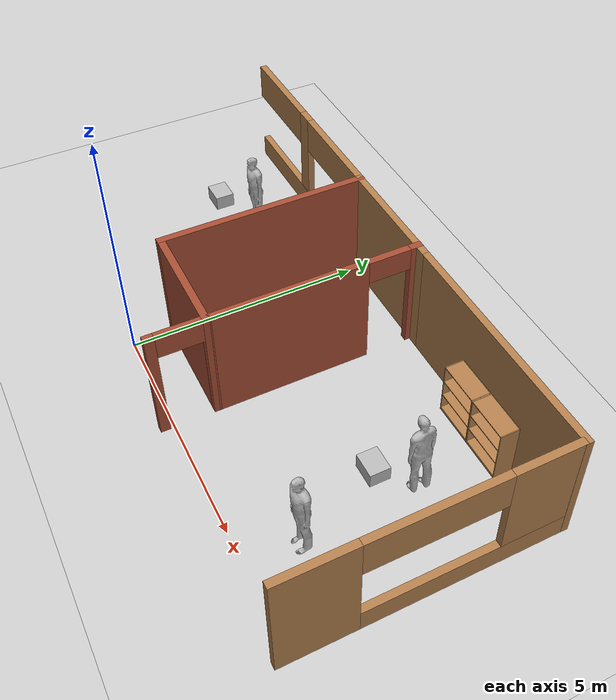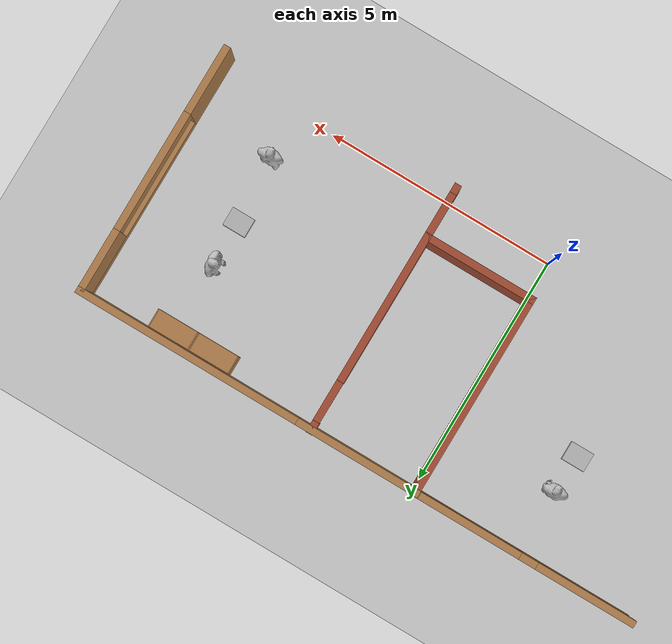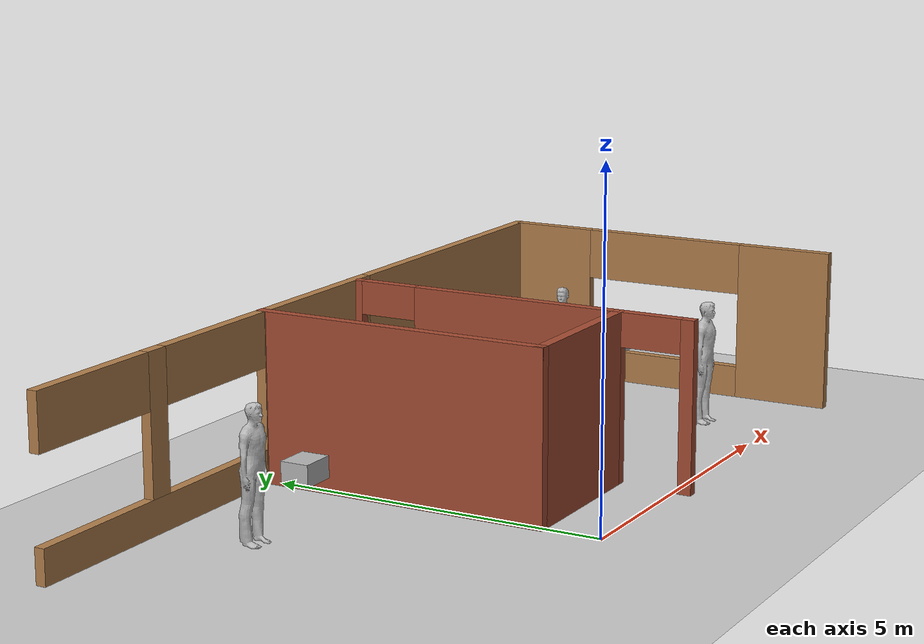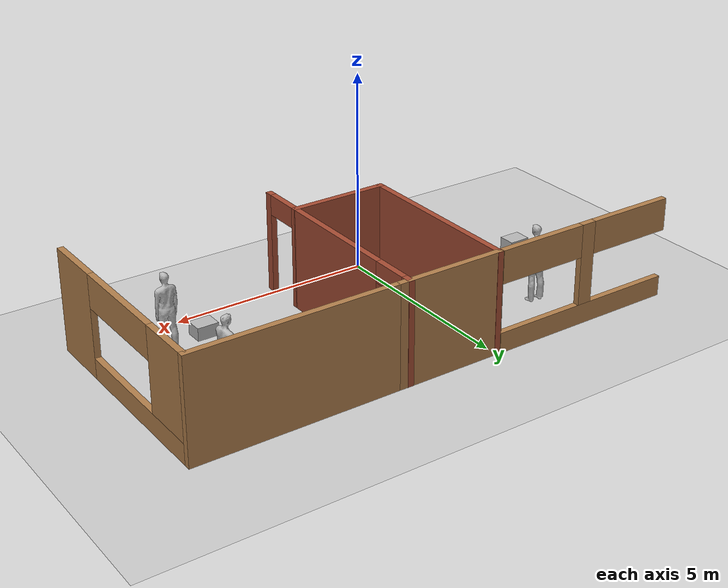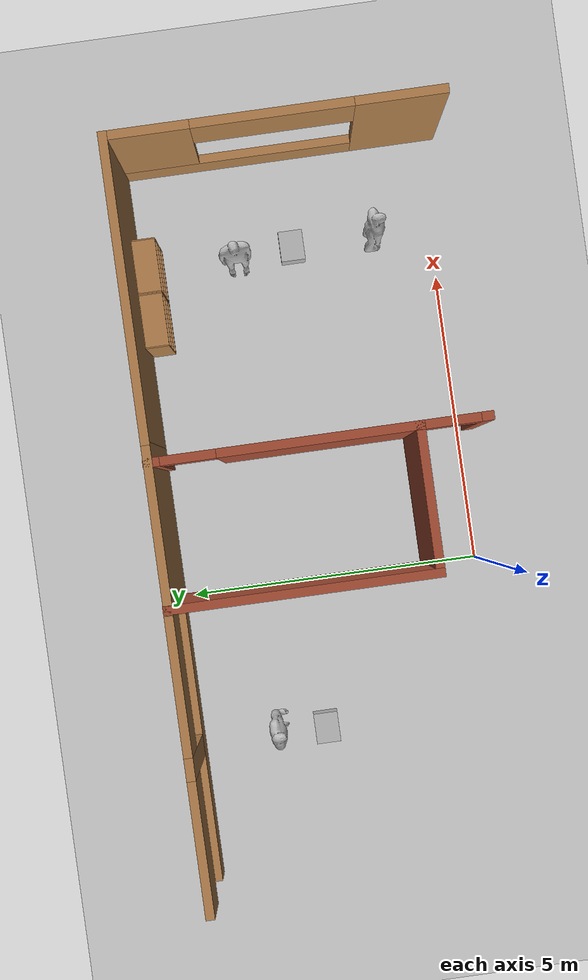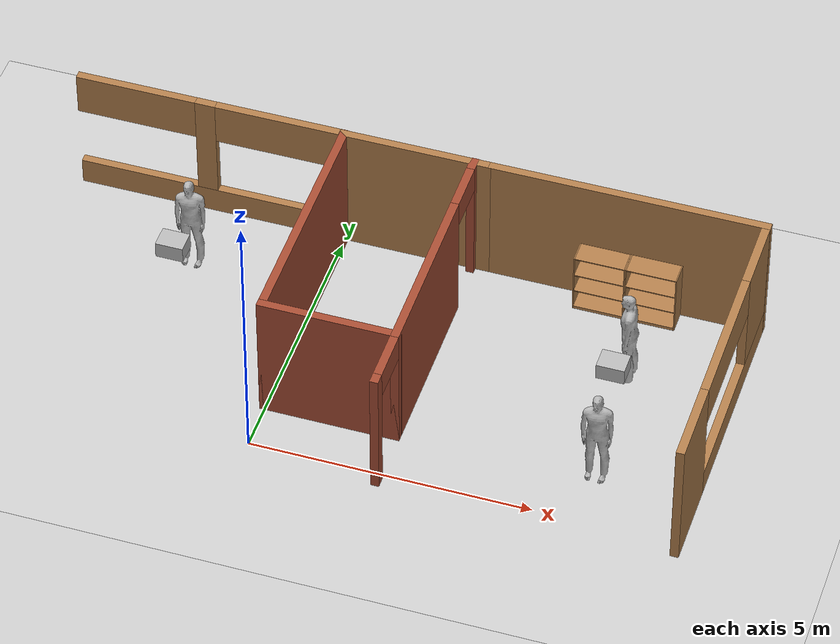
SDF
<sdf version="1.7">
 <world name="default">
  <model name="ground_plane">
   <static>1</static>
   <link name="link">
    <collision name="collision">
     <geometry><plane><normal>0 0 1</normal><size>100 100</size></plane></geometry>
     <surface><friction><ode><mu>100</mu><mu2>50</mu2></ode></friction></surface>
    </collision>
    <visual name="visual">
     <cast_shadows>0</cast_shadows>
     <geometry><plane><normal>0 0 1</normal><size>100 100</size></plane></geometry>
     <material>
      <script><uri>file://media/materials/scripts/gazebo.material</uri><name>Gazebo/Grey</name></script>
     </material>
    </visual>
   </link>
  </model>
  <model name="turtlebot3_house3">
   <link name="Wall_101">
    <pose>-0.05 3.1 0 0 0 -1.5708</pose>
    <visual name="Wall_101_Visual">
     <pose>0 0 1.25 0 -0 0</pose>
     <geometry><box><size>4.5 0.15 2.5</size></box></geometry>
     <material>
      <script><uri>file://media/materials/scripts/gazebo.material</uri><name>Gazebo/Bricks</name></script>
      <ambient>1 1 1 1</ambient>
      <diffuse>1 1 1 1</diffuse>
      <specular>0.2 0.2 0.2 1</specular>
      <emissive>0 0 0 1</emissive>
      <shader type="pixel"/>
     </material>
    </visual>
    <collision name="Wall_101_Collision">
     <pose>0 0 1.25 0 -0 0</pose>
     <geometry><box><size>4.5 0.15 2.5</size></box></geometry>
     <surface>
      <friction>
       <ode><mu>1</mu><mu2>1</mu2><fdir1>0 0 0</fdir1><slip1>0</slip1><slip2>0</slip2></ode>
       <torsional>
        <coefficient>1</coefficient>
        <patch_radius>0</patch_radius>
        <surface_radius>0</surface_radius>
        <use_patch_radius>1</use_patch_radius>
        <ode><slip>0</slip></ode>
       </torsional>
      </friction>
      <bounce><restitution_coefficient>0</restitution_coefficient><threshold>1e+06</threshold></bounce>
      <contact>
       <collide_without_contact>0</collide_without_contact>
       <collide_without_contact_bitmask>1</collide_without_contact_bitmask>
       <collide_bitmask>1</collide_bitmask>
       <ode>
        <soft_cfm>0</soft_cfm>
        <soft_erp>0.2</soft_erp>
        <kp>1e+13</kp>
        <kd>1</kd>
        <max_vel>0.01</max_vel>
        <min_depth>0</min_depth>
       </ode>
       <bullet>
        <split_impulse>1</split_impulse>
        <split_impulse_penetration_threshold>-0.01</split_impulse_penetration_threshold>
        <soft_cfm>0</soft_cfm>
        <soft_erp>0.2</soft_erp>
        <kp>1e+13</kp>
        <kd>1</kd>
       </bullet>
      </contact>
     </surface>
    </collision>
   </link>
   <link name="Wall_104">
    <pose>2.3 3.1 0 0 -0 1.5708</pose>
    <visual name="Wall_104_Visual_2">
     <pose>1.5325 0 2.25 0 -0 0</pose>
     <geometry><box><size>0.9 0.15 0.5</size></box></geometry>
     <material>
      <script><uri>file://media/materials/scripts/gazebo.material</uri><name>Gazebo/Bricks</name></script>
      <ambient>1 1 1 1</ambient>
      <diffuse>1 1 1 1</diffuse>
      <specular>0.2 0.2 0.2 1</specular>
      <emissive>0 0 0 1</emissive>
      <shader type="pixel"/>
     </material>
    </visual>
    <visual name="Wall_104_Visual_1">
     <pose>2.11625 0 1.25 0 -0 0</pose>
     <geometry><box><size>0.267504 0.15 2.5</size></box></geometry>
     <material>
      <script><uri>file://media/materials/scripts/gazebo.material</uri><name>Gazebo/Bricks</name></script>
      <ambient>1 1 1 1</ambient>
      <diffuse>1 1 1 1</diffuse>
      <specular>0.2 0.2 0.2 1</specular>
      <emissive>0 0 0 1</emissive>
      <shader type="pixel"/>
     </material>
    </visual>
    <visual name="Wall_104_Visual_0">
     <pose>-0.583752 0 1.25 0 -0 0</pose>
     <geometry><box><size>3.3325 0.15 2.5</size></box></geometry>
     <material>
      <script><uri>file://media/materials/scripts/gazebo.material</uri><name>Gazebo/Bricks</name></script>
      <ambient>1 1 1 1</ambient>
      <diffuse>1 1 1 1</diffuse>
      <specular>0.2 0.2 0.2 1</specular>
      <emissive>0 0 0 1</emissive>
      <shader type="pixel"/>
     </material>
    </visual>
    <collision name="Wall_104_Collision_1">
     <pose>2.11625 0 1.25 0 -0 0</pose>
     <geometry><box><size>0.267504 0.15 2.5</size></box></geometry>
     <surface>
      <friction>
       <ode><mu>1</mu><mu2>1</mu2><fdir1>0 0 0</fdir1><slip1>0</slip1><slip2>0</slip2></ode>
       <torsional>
        <coefficient>1</coefficient>
        <patch_radius>0</patch_radius>
        <surface_radius>0</surface_radius>
        <use_patch_radius>1</use_patch_radius>
        <ode><slip>0</slip></ode>
       </torsional>
      </friction>
      <bounce><restitution_coefficient>0</restitution_coefficient><threshold>1e+06</threshold></bounce>
      <contact>
       <collide_without_contact>0</collide_without_contact>
       <collide_without_contact_bitmask>1</collide_without_contact_bitmask>
       <collide_bitmask>1</collide_bitmask>
       <ode>
        <soft_cfm>0</soft_cfm>
        <soft_erp>0.2</soft_erp>
        <kp>1e+13</kp>
        <kd>1</kd>
        <max_vel>0.01</max_vel>
        <min_depth>0</min_depth>
       </ode>
       <bullet>
        <split_impulse>1</split_impulse>
        <split_impulse_penetration_threshold>-0.01</split_impulse_penetration_threshold>
        <soft_cfm>0</soft_cfm>
        <soft_erp>0.2</soft_erp>
        <kp>1e+13</kp>
        <kd>1</kd>
       </bullet>
      </contact>
     </surface>
    </collision>
    <collision name="Wall_104_Collision_0">
     <pose>-0.583752 0 1.25 0 -0 0</pose>
     <geometry><box><size>3.3325 0.15 2.5</size></box></geometry>
     <surface>
      <friction>
       <ode><mu>1</mu><mu2>1</mu2><fdir1>0 0 0</fdir1><slip1>0</slip1><slip2>0</slip2></ode>
       <torsional>
        <coefficient>1</coefficient>
        <patch_radius>0</patch_radius>
        <surface_radius>0</surface_radius>
        <use_patch_radius>1</use_patch_radius>
        <ode><slip>0</slip></ode>
       </torsional>
      </friction>
      <bounce><restitution_coefficient>0</restitution_coefficient><threshold>1e+06</threshold></bounce>
      <contact>
       <collide_without_contact>0</collide_without_contact>
       <collide_without_contact_bitmask>1</collide_without_contact_bitmask>
       <collide_bitmask>1</collide_bitmask>
       <ode>
        <soft_cfm>0</soft_cfm>
        <soft_erp>0.2</soft_erp>
        <kp>1e+13</kp>
        <kd>1</kd>
        <max_vel>0.01</max_vel>
        <min_depth>0</min_depth>
       </ode>
       <bullet>
        <split_impulse>1</split_impulse>
        <split_impulse_penetration_threshold>-0.01</split_impulse_penetration_threshold>
        <soft_cfm>0</soft_cfm>
        <soft_erp>0.2</soft_erp>
        <kp>1e+13</kp>
        <kd>1</kd>
       </bullet>
      </contact>
     </surface>
    </collision>
    <collision name="Wall_104_Collision_2">
     <pose>1.5325 0 2.25 0 -0 0</pose>
     <geometry><box><size>0.9 0.15 0.5</size></box></geometry>
     <surface>
      <friction>
       <ode><mu>1</mu><mu2>1</mu2><fdir1>0 0 0</fdir1><slip1>0</slip1><slip2>0</slip2></ode>
       <torsional>
        <coefficient>1</coefficient>
        <patch_radius>0</patch_radius>
        <surface_radius>0</surface_radius>
        <use_patch_radius>1</use_patch_radius>
        <ode><slip>0</slip></ode>
       </torsional>
      </friction>
      <bounce><restitution_coefficient>0</restitution_coefficient><threshold>1e+06</threshold></bounce>
      <contact>
       <collide_without_contact>0</collide_without_contact>
       <collide_without_contact_bitmask>1</collide_without_contact_bitmask>
       <collide_bitmask>1</collide_bitmask>
       <ode>
        <soft_cfm>0</soft_cfm>
        <soft_erp>0.2</soft_erp>
        <kp>1e+13</kp>
        <kd>1</kd>
        <max_vel>0.01</max_vel>
        <min_depth>0</min_depth>
       </ode>
       <bullet>
        <split_impulse>1</split_impulse>
        <split_impulse_penetration_threshold>-0.01</split_impulse_penetration_threshold>
        <soft_cfm>0</soft_cfm>
        <soft_erp>0.2</soft_erp>
        <kp>1e+13</kp>
        <kd>1</kd>
       </bullet>
      </contact>
     </surface>
    </collision>
   </link>
   <link name="Wall_81">
    <pose>5.07752 5.2688 0 0 -0 3.14159</pose>
    <visual name="Wall_81_Visual">
     <pose>0 0 1.25 0 -0 0</pose>
     <geometry><box><size>5 0.15 2.5</size></box></geometry>
     <material>
      <script><uri>file://media/materials/scripts/gazebo.material</uri><name>Gazebo/Wood</name></script>
      <ambient>1 1 1 1</ambient>
      <diffuse>1 1 1 1</diffuse>
      <specular>0.2 0.2 0.2 1</specular>
      <emissive>0 0 0 1</emissive>
      <shader type="pixel"/>
     </material>
    </visual>
    <collision name="Wall_81_Collision">
     <pose>0 0 1.25 0 -0 0</pose>
     <geometry><box><size>5 0.15 2.5</size></box></geometry>
     <surface>
      <friction>
       <ode><mu>1</mu><mu2>1</mu2><fdir1>0 0 0</fdir1><slip1>0</slip1><slip2>0</slip2></ode>
       <torsional>
        <coefficient>1</coefficient>
        <patch_radius>0</patch_radius>
        <surface_radius>0</surface_radius>
        <use_patch_radius>1</use_patch_radius>
        <ode><slip>0</slip></ode>
       </torsional>
      </friction>
      <bounce><restitution_coefficient>0</restitution_coefficient><threshold>1e+06</threshold></bounce>
      <contact>
       <collide_without_contact>0</collide_without_contact>
       <collide_without_contact_bitmask>1</collide_without_contact_bitmask>
       <collide_bitmask>1</collide_bitmask>
       <ode>
        <soft_cfm>0</soft_cfm>
        <soft_erp>0.2</soft_erp>
        <kp>1e+13</kp>
        <kd>1</kd>
        <max_vel>0.01</max_vel>
        <min_depth>0</min_depth>
       </ode>
       <bullet>
        <split_impulse>1</split_impulse>
        <split_impulse_penetration_threshold>-0.01</split_impulse_penetration_threshold>
        <soft_cfm>0</soft_cfm>
        <soft_erp>0.2</soft_erp>
        <kp>1e+13</kp>
        <kd>1</kd>
       </bullet>
      </contact>
     </surface>
    </collision>
   </link>
   <link name="Wall_82">
    <pose>1.25 5.26876 0 0 -0 3.14159</pose>
    <visual name="Wall_82_Visual">
     <pose>0 0 1.25 0 -0 0</pose>
     <geometry><box><size>2.75 0.15 2.5</size></box></geometry>
     <material>
      <script><uri>file://media/materials/scripts/gazebo.material</uri><name>Gazebo/Wood</name></script>
      <ambient>1 1 1 1</ambient>
      <diffuse>1 1 1 1</diffuse>
      <specular>0.2 0.2 0.2 1</specular>
      <emissive>0 0 0 1</emissive>
      <shader type="pixel"/>
     </material>
    </visual>
    <collision name="Wall_82_Collision">
     <pose>0 0 1.25 0 -0 0</pose>
     <geometry><box><size>2.75 0.15 2.5</size></box></geometry>
     <surface>
      <friction>
       <ode><mu>1</mu><mu2>1</mu2><fdir1>0 0 0</fdir1><slip1>0</slip1><slip2>0</slip2></ode>
       <torsional>
        <coefficient>1</coefficient>
        <patch_radius>0</patch_radius>
        <surface_radius>0</surface_radius>
        <use_patch_radius>1</use_patch_radius>
        <ode><slip>0</slip></ode>
       </torsional>
      </friction>
      <bounce><restitution_coefficient>0</restitution_coefficient><threshold>1e+06</threshold></bounce>
      <contact>
       <collide_without_contact>0</collide_without_contact>
       <collide_without_contact_bitmask>1</collide_without_contact_bitmask>
       <collide_bitmask>1</collide_bitmask>
       <ode>
        <soft_cfm>0</soft_cfm>
        <soft_erp>0.2</soft_erp>
        <kp>1e+13</kp>
        <kd>1</kd>
        <max_vel>0.01</max_vel>
        <min_depth>0</min_depth>
       </ode>
       <bullet>
        <split_impulse>1</split_impulse>
        <split_impulse_penetration_threshold>-0.01</split_impulse_penetration_threshold>
        <soft_cfm>0</soft_cfm>
        <soft_erp>0.2</soft_erp>
        <kp>1e+13</kp>
        <kd>1</kd>
       </bullet>
      </contact>
     </surface>
    </collision>
   </link>
   <link name="Wall_83">
    <pose>-2.475 5.275 0 0 -0 3.14159</pose>
    <visual name="Wall_83_Visual_0">
     <pose>-2.41901 0 1.25 0 -0 0</pose>
     <geometry><box><size>0.161986 0.15 2.5</size></box></geometry>
     <material>
      <script><uri>file://media/materials/scripts/gazebo.material</uri><name>Gazebo/Wood</name></script>
      <ambient>1 1 1 1</ambient>
      <diffuse>1 1 1 1</diffuse>
      <specular>0.2 0.2 0.2 1</specular>
      <emissive>0 0 0 1</emissive>
      <shader type="pixel"/>
     </material>
    </visual>
    <visual name="Wall_83_Visual_1">
     <pose>0.080993 0 0.25 0 -0 0</pose>
     <geometry><box><size>4.83801 0.15 0.5</size></box></geometry>
     <material>
      <script><uri>file://media/materials/scripts/gazebo.material</uri><name>Gazebo/Wood</name></script>
      <ambient>1 1 1 1</ambient>
      <diffuse>1 1 1 1</diffuse>
      <specular>0.2 0.2 0.2 1</specular>
      <emissive>0 0 0 1</emissive>
      <shader type="pixel"/>
     </material>
    </visual>
    <visual name="Wall_83_Visual_6">
     <pose>1.39775 0 2.1 0 -0 0</pose>
     <geometry><box><size>2.20449 0.15 0.8</size></box></geometry>
     <material>
      <script><uri>file://media/materials/scripts/gazebo.material</uri><name>Gazebo/Wood</name></script>
      <ambient>1 1 1 1</ambient>
      <diffuse>1 1 1 1</diffuse>
      <specular>0.2 0.2 0.2 1</specular>
      <emissive>0 0 0 1</emissive>
      <shader type="pixel"/>
     </material>
    </visual>
    <visual name="Wall_83_Visual_4">
     <pose>-1.20651 0 2.1 0 -0 0</pose>
     <geometry><box><size>2.263 0.15 0.8</size></box></geometry>
     <material>
      <script><uri>file://media/materials/scripts/gazebo.material</uri><name>Gazebo/Wood</name></script>
      <ambient>1 1 1 1</ambient>
      <diffuse>1 1 1 1</diffuse>
      <specular>0.2 0.2 0.2 1</specular>
      <emissive>0 0 0 1</emissive>
      <shader type="pixel"/>
     </material>
    </visual>
    <visual name="Wall_83_Visual_3">
     <pose>0.110246 0 1.5 0 -0 0</pose>
     <geometry><box><size>0.37052 0.15 2</size></box></geometry>
     <material>
      <script><uri>file://media/materials/scripts/gazebo.material</uri><name>Gazebo/Wood</name></script>
      <ambient>1 1 1 1</ambient>
      <diffuse>1 1 1 1</diffuse>
      <specular>0.2 0.2 0.2 1</specular>
      <emissive>0 0 0 1</emissive>
      <shader type="pixel"/>
     </material>
    </visual>
    <visual name="Wall_83_Visual_5">
     <pose>1.39775 0 2.1 0 -0 0</pose>
     <geometry><box><size>2.20449 0.15 0.8</size></box></geometry>
     <material>
      <script><uri>file://media/materials/scripts/gazebo.material</uri><name>Gazebo/Wood</name></script>
      <ambient>1 1 1 1</ambient>
      <diffuse>1 1 1 1</diffuse>
      <specular>0.2 0.2 0.2 1</specular>
      <emissive>0 0 0 1</emissive>
      <shader type="pixel"/>
     </material>
    </visual>
    <visual name="Wall_83_Visual_2">
     <pose>0.110246 0 1.5 0 -0 0</pose>
     <geometry><box><size>0.37052 0.15 2</size></box></geometry>
     <material>
      <script><uri>file://media/materials/scripts/gazebo.material</uri><name>Gazebo/Wood</name></script>
      <ambient>1 1 1 1</ambient>
      <diffuse>1 1 1 1</diffuse>
      <specular>0.2 0.2 0.2 1</specular>
      <emissive>0 0 0 1</emissive>
      <shader type="pixel"/>
     </material>
    </visual>
    <collision name="Wall_83_Collision_5">
     <pose>1.39775 0 2.1 0 -0 0</pose>
     <geometry><box><size>2.20449 0.15 0.8</size></box></geometry>
     <surface>
      <friction>
       <ode><mu>1</mu><mu2>1</mu2><fdir1>0 0 0</fdir1><slip1>0</slip1><slip2>0</slip2></ode>
       <torsional>
        <coefficient>1</coefficient>
        <patch_radius>0</patch_radius>
        <surface_radius>0</surface_radius>
        <use_patch_radius>1</use_patch_radius>
        <ode><slip>0</slip></ode>
       </torsional>
      </friction>
      <bounce><restitution_coefficient>0</restitution_coefficient><threshold>1e+06</threshold></bounce>
      <contact>
       <collide_without_contact>0</collide_without_contact>
       <collide_without_contact_bitmask>1</collide_without_contact_bitmask>
       <collide_bitmask>1</collide_bitmask>
       <ode>
        <soft_cfm>0</soft_cfm>
        <soft_erp>0.2</soft_erp>
        <kp>1e+13</kp>
        <kd>1</kd>
        <max_vel>0.01</max_vel>
        <min_depth>0</min_depth>
       </ode>
       <bullet>
        <split_impulse>1</split_impulse>
        <split_impulse_penetration_threshold>-0.01</split_impulse_penetration_threshold>
        <soft_cfm>0</soft_cfm>
        <soft_erp>0.2</soft_erp>
        <kp>1e+13</kp>
        <kd>1</kd>
       </bullet>
      </contact>
     </surface>
    </collision>
    <collision name="Wall_83_Collision_1">
     <pose>0.080993 0 0.25 0 -0 0</pose>
     <geometry><box><size>4.83801 0.15 0.5</size></box></geometry>
     <surface>
      <friction>
       <ode><mu>1</mu><mu2>1</mu2><fdir1>0 0 0</fdir1><slip1>0</slip1><slip2>0</slip2></ode>
       <torsional>
        <coefficient>1</coefficient>
        <patch_radius>0</patch_radius>
        <surface_radius>0</surface_radius>
        <use_patch_radius>1</use_patch_radius>
        <ode><slip>0</slip></ode>
       </torsional>
      </friction>
      <bounce><restitution_coefficient>0</restitution_coefficient><threshold>1e+06</threshold></bounce>
      <contact>
       <collide_without_contact>0</collide_without_contact>
       <collide_without_contact_bitmask>1</collide_without_contact_bitmask>
       <collide_bitmask>1</collide_bitmask>
       <ode>
        <soft_cfm>0</soft_cfm>
        <soft_erp>0.2</soft_erp>
        <kp>1e+13</kp>
        <kd>1</kd>
        <max_vel>0.01</max_vel>
        <min_depth>0</min_depth>
       </ode>
       <bullet>
        <split_impulse>1</split_impulse>
        <split_impulse_penetration_threshold>-0.01</split_impulse_penetration_threshold>
        <soft_cfm>0</soft_cfm>
        <soft_erp>0.2</soft_erp>
        <kp>1e+13</kp>
        <kd>1</kd>
       </bullet>
      </contact>
     </surface>
    </collision>
    <collision name="Wall_83_Collision_4">
     <pose>-1.20651 0 2.1 0 -0 0</pose>
     <geometry><box><size>2.263 0.15 0.8</size></box></geometry>
     <surface>
      <friction>
       <ode><mu>1</mu><mu2>1</mu2><fdir1>0 0 0</fdir1><slip1>0</slip1><slip2>0</slip2></ode>
       <torsional>
        <coefficient>1</coefficient>
        <patch_radius>0</patch_radius>
        <surface_radius>0</surface_radius>
        <use_patch_radius>1</use_patch_radius>
        <ode><slip>0</slip></ode>
       </torsional>
      </friction>
      <bounce><restitution_coefficient>0</restitution_coefficient><threshold>1e+06</threshold></bounce>
      <contact>
       <collide_without_contact>0</collide_without_contact>
       <collide_without_contact_bitmask>1</collide_without_contact_bitmask>
       <collide_bitmask>1</collide_bitmask>
       <ode>
        <soft_cfm>0</soft_cfm>
        <soft_erp>0.2</soft_erp>
        <kp>1e+13</kp>
        <kd>1</kd>
        <max_vel>0.01</max_vel>
        <min_depth>0</min_depth>
       </ode>
       <bullet>
        <split_impulse>1</split_impulse>
        <split_impulse_penetration_threshold>-0.01</split_impulse_penetration_threshold>
        <soft_cfm>0</soft_cfm>
        <soft_erp>0.2</soft_erp>
        <kp>1e+13</kp>
        <kd>1</kd>
       </bullet>
      </contact>
     </surface>
    </collision>
    <collision name="Wall_83_Collision_3">
     <pose>0.110246 0 1.5 0 -0 0</pose>
     <geometry><box><size>0.37052 0.15 2</size></box></geometry>
     <surface>
      <friction>
       <ode><mu>1</mu><mu2>1</mu2><fdir1>0 0 0</fdir1><slip1>0</slip1><slip2>0</slip2></ode>
       <torsional>
        <coefficient>1</coefficient>
        <patch_radius>0</patch_radius>
        <surface_radius>0</surface_radius>
        <use_patch_radius>1</use_patch_radius>
        <ode><slip>0</slip></ode>
       </torsional>
      </friction>
      <bounce><restitution_coefficient>0</restitution_coefficient><threshold>1e+06</threshold></bounce>
      <contact>
       <collide_without_contact>0</collide_without_contact>
       <collide_without_contact_bitmask>1</collide_without_contact_bitmask>
       <collide_bitmask>1</collide_bitmask>
       <ode>
        <soft_cfm>0</soft_cfm>
        <soft_erp>0.2</soft_erp>
        <kp>1e+13</kp>
        <kd>1</kd>
        <max_vel>0.01</max_vel>
        <min_depth>0</min_depth>
       </ode>
       <bullet>
        <split_impulse>1</split_impulse>
        <split_impulse_penetration_threshold>-0.01</split_impulse_penetration_threshold>
        <soft_cfm>0</soft_cfm>
        <soft_erp>0.2</soft_erp>
        <kp>1e+13</kp>
        <kd>1</kd>
       </bullet>
      </contact>
     </surface>
    </collision>
    <collision name="Wall_83_Collision_6">
     <pose>1.39775 0 2.1 0 -0 0</pose>
     <geometry><box><size>2.20449 0.15 0.8</size></box></geometry>
     <surface>
      <friction>
       <ode><mu>1</mu><mu2>1</mu2><fdir1>0 0 0</fdir1><slip1>0</slip1><slip2>0</slip2></ode>
       <torsional>
        <coefficient>1</coefficient>
        <patch_radius>0</patch_radius>
        <surface_radius>0</surface_radius>
        <use_patch_radius>1</use_patch_radius>
        <ode><slip>0</slip></ode>
       </torsional>
      </friction>
      <bounce><restitution_coefficient>0</restitution_coefficient><threshold>1e+06</threshold></bounce>
      <contact>
       <collide_without_contact>0</collide_without_contact>
       <collide_without_contact_bitmask>1</collide_without_contact_bitmask>
       <collide_bitmask>1</collide_bitmask>
       <ode>
        <soft_cfm>0</soft_cfm>
        <soft_erp>0.2</soft_erp>
        <kp>1e+13</kp>
        <kd>1</kd>
        <max_vel>0.01</max_vel>
        <min_depth>0</min_depth>
       </ode>
       <bullet>
        <split_impulse>1</split_impulse>
        <split_impulse_penetration_threshold>-0.01</split_impulse_penetration_threshold>
        <soft_cfm>0</soft_cfm>
        <soft_erp>0.2</soft_erp>
        <kp>1e+13</kp>
        <kd>1</kd>
       </bullet>
      </contact>
     </surface>
    </collision>
    <collision name="Wall_83_Collision_2">
     <pose>0.110246 0 1.5 0 -0 0</pose>
     <geometry><box><size>0.37052 0.15 2</size></box></geometry>
     <surface>
      <friction>
       <ode><mu>1</mu><mu2>1</mu2><fdir1>0 0 0</fdir1><slip1>0</slip1><slip2>0</slip2></ode>
       <torsional>
        <coefficient>1</coefficient>
        <patch_radius>0</patch_radius>
        <surface_radius>0</surface_radius>
        <use_patch_radius>1</use_patch_radius>
        <ode><slip>0</slip></ode>
       </torsional>
      </friction>
      <bounce><restitution_coefficient>0</restitution_coefficient><threshold>1e+06</threshold></bounce>
      <contact>
       <collide_without_contact>0</collide_without_contact>
       <collide_without_contact_bitmask>1</collide_without_contact_bitmask>
       <collide_bitmask>1</collide_bitmask>
       <ode>
        <soft_cfm>0</soft_cfm>
        <soft_erp>0.2</soft_erp>
        <kp>1e+13</kp>
        <kd>1</kd>
        <max_vel>0.01</max_vel>
        <min_depth>0</min_depth>
       </ode>
       <bullet>
        <split_impulse>1</split_impulse>
        <split_impulse_penetration_threshold>-0.01</split_impulse_penetration_threshold>
        <soft_cfm>0</soft_cfm>
        <soft_erp>0.2</soft_erp>
        <kp>1e+13</kp>
        <kd>1</kd>
       </bullet>
      </contact>
     </surface>
    </collision>
    <collision name="Wall_83_Collision_0">
     <pose>-2.41901 0 1.25 0 -0 0</pose>
     <geometry><box><size>0.161986 0.15 2.5</size></box></geometry>
     <surface>
      <friction>
       <ode><mu>1</mu><mu2>1</mu2><fdir1>0 0 0</fdir1><slip1>0</slip1><slip2>0</slip2></ode>
       <torsional>
        <coefficient>1</coefficient>
        <patch_radius>0</patch_radius>
        <surface_radius>0</surface_radius>
        <use_patch_radius>1</use_patch_radius>
        <ode><slip>0</slip></ode>
       </torsional>
      </friction>
      <bounce><restitution_coefficient>0</restitution_coefficient><threshold>1e+06</threshold></bounce>
      <contact>
       <collide_without_contact>0</collide_without_contact>
       <collide_without_contact_bitmask>1</collide_without_contact_bitmask>
       <collide_bitmask>1</collide_bitmask>
       <ode>
        <soft_cfm>0</soft_cfm>
        <soft_erp>0.2</soft_erp>
        <kp>1e+13</kp>
        <kd>1</kd>
        <max_vel>0.01</max_vel>
        <min_depth>0</min_depth>
       </ode>
       <bullet>
        <split_impulse>1</split_impulse>
        <split_impulse_penetration_threshold>-0.01</split_impulse_penetration_threshold>
        <soft_cfm>0</soft_cfm>
        <soft_erp>0.2</soft_erp>
        <kp>1e+13</kp>
        <kd>1</kd>
       </bullet>
      </contact>
     </surface>
    </collision>
   </link>
   <link name="Wall_90">
    <pose>1.125 0.925 0 0 -0 0</pose>
    <visual name="Wall_90_Visual">
     <pose>0 0 1.25 0 -0 0</pose>
     <geometry><box><size>2.5 0.15 2.5</size></box></geometry>
     <material>
      <script><uri>file://media/materials/scripts/gazebo.material</uri><name>Gazebo/Bricks</name></script>
      <ambient>1 1 1 1</ambient>
      <diffuse>1 1 1 1</diffuse>
      <specular>0.2 0.2 0.2 1</specular>
      <emissive>0 0 0 1</emissive>
      <shader type="pixel"/>
     </material>
    </visual>
    <collision name="Wall_90_Collision">
     <pose>0 0 1.25 0 -0 0</pose>
     <geometry><box><size>2.5 0.15 2.5</size></box></geometry>
     <surface>
      <friction>
       <ode><mu>1</mu><mu2>1</mu2><fdir1>0 0 0</fdir1><slip1>0</slip1><slip2>0</slip2></ode>
       <torsional>
        <coefficient>1</coefficient>
        <patch_radius>0</patch_radius>
        <surface_radius>0</surface_radius>
        <use_patch_radius>1</use_patch_radius>
        <ode><slip>0</slip></ode>
       </torsional>
      </friction>
      <bounce><restitution_coefficient>0</restitution_coefficient><threshold>1e+06</threshold></bounce>
      <contact>
       <collide_without_contact>0</collide_without_contact>
       <collide_without_contact_bitmask>1</collide_without_contact_bitmask>
       <collide_bitmask>1</collide_bitmask>
       <ode>
        <soft_cfm>0</soft_cfm>
        <soft_erp>0.2</soft_erp>
        <kp>1e+13</kp>
        <kd>1</kd>
        <max_vel>0.01</max_vel>
        <min_depth>0</min_depth>
       </ode>
       <bullet>
        <split_impulse>1</split_impulse>
        <split_impulse_penetration_threshold>-0.01</split_impulse_penetration_threshold>
        <soft_cfm>0</soft_cfm>
        <soft_erp>0.2</soft_erp>
        <kp>1e+13</kp>
        <kd>1</kd>
       </bullet>
      </contact>
     </surface>
    </collision>
   </link>
   <link name="Wall_91">
    <pose>2.29994 0.37506 0 0 0 -1.57091</pose>
    <visual name="Wall_91_Visual_0">
     <pose>-0.551501 0 1.25 0 -0 0</pose>
     <geometry><box><size>0.146998 0.15 2.5</size></box></geometry>
     <material>
      <script><uri>file://media/materials/scripts/gazebo.material</uri><name>Gazebo/Bricks</name></script>
      <ambient>1 1 1 1</ambient>
      <diffuse>1 1 1 1</diffuse>
      <specular>0.2 0.2 0.2 1</specular>
      <emissive>0 0 0 1</emissive>
      <shader type="pixel"/>
     </material>
    </visual>
    <visual name="Wall_91_Visual_1">
     <pose>0.523499 0 1.25 0 -0 0</pose>
     <geometry><box><size>0.203002 0.15 2.5</size></box></geometry>
     <material>
      <script><uri>file://media/materials/scripts/gazebo.material</uri><name>Gazebo/Bricks</name></script>
      <ambient>1 1 1 1</ambient>
      <diffuse>1 1 1 1</diffuse>
      <specular>0.2 0.2 0.2 1</specular>
      <emissive>0 0 0 1</emissive>
      <shader type="pixel"/>
     </material>
    </visual>
    <visual name="Wall_91_Visual_2">
     <pose>-0.028002 0 2.25 0 -0 0</pose>
     <geometry><box><size>0.9 0.15 0.5</size></box></geometry>
     <material>
      <script><uri>file://media/materials/scripts/gazebo.material</uri><name>Gazebo/Bricks</name></script>
      <ambient>1 1 1 1</ambient>
      <diffuse>1 1 1 1</diffuse>
      <specular>0.2 0.2 0.2 1</specular>
      <emissive>0 0 0 1</emissive>
      <shader type="pixel"/>
     </material>
    </visual>
    <collision name="Wall_91_Collision_2">
     <pose>-0.028002 0 2.25 0 -0 0</pose>
     <geometry><box><size>0.9 0.15 0.5</size></box></geometry>
     <surface>
      <friction>
       <ode><mu>1</mu><mu2>1</mu2><fdir1>0 0 0</fdir1><slip1>0</slip1><slip2>0</slip2></ode>
       <torsional>
        <coefficient>1</coefficient>
        <patch_radius>0</patch_radius>
        <surface_radius>0</surface_radius>
        <use_patch_radius>1</use_patch_radius>
        <ode><slip>0</slip></ode>
       </torsional>
      </friction>
      <bounce><restitution_coefficient>0</restitution_coefficient><threshold>1e+06</threshold></bounce>
      <contact>
       <collide_without_contact>0</collide_without_contact>
       <collide_without_contact_bitmask>1</collide_without_contact_bitmask>
       <collide_bitmask>1</collide_bitmask>
       <ode>
        <soft_cfm>0</soft_cfm>
        <soft_erp>0.2</soft_erp>
        <kp>1e+13</kp>
        <kd>1</kd>
        <max_vel>0.01</max_vel>
        <min_depth>0</min_depth>
       </ode>
       <bullet>
        <split_impulse>1</split_impulse>
        <split_impulse_penetration_threshold>-0.01</split_impulse_penetration_threshold>
        <soft_cfm>0</soft_cfm>
        <soft_erp>0.2</soft_erp>
        <kp>1e+13</kp>
        <kd>1</kd>
       </bullet>
      </contact>
     </surface>
    </collision>
    <collision name="Wall_91_Collision_1">
     <pose>0.523499 0 1.25 0 -0 0</pose>
     <geometry><box><size>0.203002 0.15 2.5</size></box></geometry>
     <surface>
      <friction>
       <ode><mu>1</mu><mu2>1</mu2><fdir1>0 0 0</fdir1><slip1>0</slip1><slip2>0</slip2></ode>
       <torsional>
        <coefficient>1</coefficient>
        <patch_radius>0</patch_radius>
        <surface_radius>0</surface_radius>
        <use_patch_radius>1</use_patch_radius>
        <ode><slip>0</slip></ode>
       </torsional>
      </friction>
      <bounce><restitution_coefficient>0</restitution_coefficient><threshold>1e+06</threshold></bounce>
      <contact>
       <collide_without_contact>0</collide_without_contact>
       <collide_without_contact_bitmask>1</collide_without_contact_bitmask>
       <collide_bitmask>1</collide_bitmask>
       <ode>
        <soft_cfm>0</soft_cfm>
        <soft_erp>0.2</soft_erp>
        <kp>1e+13</kp>
        <kd>1</kd>
        <max_vel>0.01</max_vel>
        <min_depth>0</min_depth>
       </ode>
       <bullet>
        <split_impulse>1</split_impulse>
        <split_impulse_penetration_threshold>-0.01</split_impulse_penetration_threshold>
        <soft_cfm>0</soft_cfm>
        <soft_erp>0.2</soft_erp>
        <kp>1e+13</kp>
        <kd>1</kd>
       </bullet>
      </contact>
     </surface>
    </collision>
    <collision name="Wall_91_Collision_0">
     <pose>-0.551501 0 1.25 0 -0 0</pose>
     <geometry><box><size>0.146998 0.15 2.5</size></box></geometry>
     <surface>
      <friction>
       <ode><mu>1</mu><mu2>1</mu2><fdir1>0 0 0</fdir1><slip1>0</slip1><slip2>0</slip2></ode>
       <torsional>
        <coefficient>1</coefficient>
        <patch_radius>0</patch_radius>
        <surface_radius>0</surface_radius>
        <use_patch_radius>1</use_patch_radius>
        <ode><slip>0</slip></ode>
       </torsional>
      </friction>
      <bounce><restitution_coefficient>0</restitution_coefficient><threshold>1e+06</threshold></bounce>
      <contact>
       <collide_without_contact>0</collide_without_contact>
       <collide_without_contact_bitmask>1</collide_without_contact_bitmask>
       <collide_bitmask>1</collide_bitmask>
       <ode>
        <soft_cfm>0</soft_cfm>
        <soft_erp>0.2</soft_erp>
        <kp>1e+13</kp>
        <kd>1</kd>
        <max_vel>0.01</max_vel>
        <min_depth>0</min_depth>
       </ode>
       <bullet>
        <split_impulse>1</split_impulse>
        <split_impulse_penetration_threshold>-0.01</split_impulse_penetration_threshold>
        <soft_cfm>0</soft_cfm>
        <soft_erp>0.2</soft_erp>
        <kp>1e+13</kp>
        <kd>1</kd>
       </bullet>
      </contact>
     </surface>
    </collision>
   </link>
   <link name="Wall_96">
    <pose>7.5 2.5 0 0 -0 1.5708</pose>
    <visual name="Wall_96_Visual_0">
     <pose>-1.99826 0 1.25 0 -0 0</pose>
     <geometry><box><size>1.50348 0.15 2.5</size></box></geometry>
     <material>
      <script><uri>file://media/materials/scripts/gazebo.material</uri><name>Gazebo/Wood</name></script>
      <ambient>1 1 1 1</ambient>
      <diffuse>1 1 1 1</diffuse>
      <specular>0.2 0.2 0.2 1</specular>
      <emissive>0 0 0 1</emissive>
      <shader type="pixel"/>
     </material>
    </visual>
    <visual name="Wall_96_Visual_3">
     <pose>0.070981 0 2.1 0 -0 0</pose>
     <geometry><box><size>2.635 0.15 0.8</size></box></geometry>
     <material>
      <script><uri>file://media/materials/scripts/gazebo.material</uri><name>Gazebo/Wood</name></script>
      <ambient>1 1 1 1</ambient>
      <diffuse>1 1 1 1</diffuse>
      <specular>0.2 0.2 0.2 1</specular>
      <emissive>0 0 0 1</emissive>
      <shader type="pixel"/>
     </material>
    </visual>
    <visual name="Wall_96_Visual_2">
     <pose>2.06924 0 1.5 0 -0 0</pose>
     <geometry><box><size>1.36152 0.15 2</size></box></geometry>
     <material>
      <script><uri>file://media/materials/scripts/gazebo.material</uri><name>Gazebo/Wood</name></script>
      <ambient>1 1 1 1</ambient>
      <diffuse>1 1 1 1</diffuse>
      <specular>0.2 0.2 0.2 1</specular>
      <emissive>0 0 0 1</emissive>
      <shader type="pixel"/>
     </material>
    </visual>
    <visual name="Wall_96_Visual_1">
     <pose>0.75174 0 0.25 0 -0 0</pose>
     <geometry><box><size>3.99652 0.15 0.5</size></box></geometry>
     <material>
      <script><uri>file://media/materials/scripts/gazebo.material</uri><name>Gazebo/Wood</name></script>
      <ambient>1 1 1 1</ambient>
      <diffuse>1 1 1 1</diffuse>
      <specular>0.2 0.2 0.2 1</specular>
      <emissive>0 0 0 1</emissive>
      <shader type="pixel"/>
     </material>
    </visual>
    <collision name="Wall_96_Collision_0">
     <pose>-1.99826 0 1.25 0 -0 0</pose>
     <geometry><box><size>1.50348 0.15 2.5</size></box></geometry>
     <surface>
      <friction>
       <ode><mu>1</mu><mu2>1</mu2><fdir1>0 0 0</fdir1><slip1>0</slip1><slip2>0</slip2></ode>
       <torsional>
        <coefficient>1</coefficient>
        <patch_radius>0</patch_radius>
        <surface_radius>0</surface_radius>
        <use_patch_radius>1</use_patch_radius>
        <ode><slip>0</slip></ode>
       </torsional>
      </friction>
      <bounce><restitution_coefficient>0</restitution_coefficient><threshold>1e+06</threshold></bounce>
      <contact>
       <collide_without_contact>0</collide_without_contact>
       <collide_without_contact_bitmask>1</collide_without_contact_bitmask>
       <collide_bitmask>1</collide_bitmask>
       <ode>
        <soft_cfm>0</soft_cfm>
        <soft_erp>0.2</soft_erp>
        <kp>1e+13</kp>
        <kd>1</kd>
        <max_vel>0.01</max_vel>
        <min_depth>0</min_depth>
       </ode>
       <bullet>
        <split_impulse>1</split_impulse>
        <split_impulse_penetration_threshold>-0.01</split_impulse_penetration_threshold>
        <soft_cfm>0</soft_cfm>
        <soft_erp>0.2</soft_erp>
        <kp>1e+13</kp>
        <kd>1</kd>
       </bullet>
      </contact>
     </surface>
    </collision>
    <collision name="Wall_96_Collision_2">
     <pose>2.06924 0 1.5 0 -0 0</pose>
     <geometry><box><size>1.36152 0.15 2</size></box></geometry>
     <surface>
      <friction>
       <ode><mu>1</mu><mu2>1</mu2><fdir1>0 0 0</fdir1><slip1>0</slip1><slip2>0</slip2></ode>
       <torsional>
        <coefficient>1</coefficient>
        <patch_radius>0</patch_radius>
        <surface_radius>0</surface_radius>
        <use_patch_radius>1</use_patch_radius>
        <ode><slip>0</slip></ode>
       </torsional>
      </friction>
      <bounce><restitution_coefficient>0</restitution_coefficient><threshold>1e+06</threshold></bounce>
      <contact>
       <collide_without_contact>0</collide_without_contact>
       <collide_without_contact_bitmask>1</collide_without_contact_bitmask>
       <collide_bitmask>1</collide_bitmask>
       <ode>
        <soft_cfm>0</soft_cfm>
        <soft_erp>0.2</soft_erp>
        <kp>1e+13</kp>
        <kd>1</kd>
        <max_vel>0.01</max_vel>
        <min_depth>0</min_depth>
       </ode>
       <bullet>
        <split_impulse>1</split_impulse>
        <split_impulse_penetration_threshold>-0.01</split_impulse_penetration_threshold>
        <soft_cfm>0</soft_cfm>
        <soft_erp>0.2</soft_erp>
        <kp>1e+13</kp>
        <kd>1</kd>
       </bullet>
      </contact>
     </surface>
    </collision>
    <collision name="Wall_96_Collision_1">
     <pose>0.75174 0 0.25 0 -0 0</pose>
     <geometry><box><size>3.99652 0.15 0.5</size></box></geometry>
     <surface>
      <friction>
       <ode><mu>1</mu><mu2>1</mu2><fdir1>0 0 0</fdir1><slip1>0</slip1><slip2>0</slip2></ode>
       <torsional>
        <coefficient>1</coefficient>
        <patch_radius>0</patch_radius>
        <surface_radius>0</surface_radius>
        <use_patch_radius>1</use_patch_radius>
        <ode><slip>0</slip></ode>
       </torsional>
      </friction>
      <bounce><restitution_coefficient>0</restitution_coefficient><threshold>1e+06</threshold></bounce>
      <contact>
       <collide_without_contact>0</collide_without_contact>
       <collide_without_contact_bitmask>1</collide_without_contact_bitmask>
       <collide_bitmask>1</collide_bitmask>
       <ode>
        <soft_cfm>0</soft_cfm>
        <soft_erp>0.2</soft_erp>
        <kp>1e+13</kp>
        <kd>1</kd>
        <max_vel>0.01</max_vel>
        <min_depth>0</min_depth>
       </ode>
       <bullet>
        <split_impulse>1</split_impulse>
        <split_impulse_penetration_threshold>-0.01</split_impulse_penetration_threshold>
        <soft_cfm>0</soft_cfm>
        <soft_erp>0.2</soft_erp>
        <kp>1e+13</kp>
        <kd>1</kd>
       </bullet>
      </contact>
     </surface>
    </collision>
    <collision name="Wall_96_Collision_3">
     <pose>0.070981 0 2.1 0 -0 0</pose>
     <geometry><box><size>2.635 0.15 0.8</size></box></geometry>
     <surface>
      <friction>
       <ode><mu>1</mu><mu2>1</mu2><fdir1>0 0 0</fdir1><slip1>0</slip1><slip2>0</slip2></ode>
       <torsional>
        <coefficient>1</coefficient>
        <patch_radius>0</patch_radius>
        <surface_radius>0</surface_radius>
        <use_patch_radius>1</use_patch_radius>
        <ode><slip>0</slip></ode>
       </torsional>
      </friction>
      <bounce><restitution_coefficient>0</restitution_coefficient><threshold>1e+06</threshold></bounce>
      <contact>
       <collide_without_contact>0</collide_without_contact>
       <collide_without_contact_bitmask>1</collide_without_contact_bitmask>
       <collide_bitmask>1</collide_bitmask>
       <ode>
        <soft_cfm>0</soft_cfm>
        <soft_erp>0.2</soft_erp>
        <kp>1e+13</kp>
        <kd>1</kd>
        <max_vel>0.01</max_vel>
        <min_depth>0</min_depth>
       </ode>
       <bullet>
        <split_impulse>1</split_impulse>
        <split_impulse_penetration_threshold>-0.01</split_impulse_penetration_threshold>
        <soft_cfm>0</soft_cfm>
        <soft_erp>0.2</soft_erp>
        <kp>1e+13</kp>
        <kd>1</kd>
       </bullet>
      </contact>
     </surface>
    </collision>
   </link>
   <model name="bookshelf_0">
    <static>1</static>
    <link name="link">
     <inertial><mass>1</mass></inertial>
     <collision name="back">
      <pose>0 0.005 0.6 0 -0 0</pose>
      <geometry><box><size>0.9 0.01 1.2</size></box></geometry>
     </collision>
     <visual name="visual1">
      <pose>0 0.005 0.6 0 -0 0</pose>
      <geometry><box><size>0.9 0.01 1.2</size></box></geometry>
      <material>
       <script><uri>file://media/materials/scripts/gazebo.material</uri><name>Gazebo/Wood</name></script>
      </material>
     </visual>
     <collision name="left_side">
      <pose>0.45 -0.195 0.6 0 -0 0</pose>
      <geometry><box><size>0.02 0.4 1.2</size></box></geometry>
     </collision>
     <visual name="visual2">
      <pose>0.45 -0.195 0.6 0 -0 0</pose>
      <geometry><box><size>0.02 0.4 1.2</size></box></geometry>
      <material>
       <script><uri>file://media/materials/scripts/gazebo.material</uri><name>Gazebo/Wood</name></script>
      </material>
     </visual>
     <collision name="right_side">
      <pose>-0.45 -0.195 0.6 0 -0 0</pose>
      <geometry><box><size>0.02 0.4 1.2</size></box></geometry>
     </collision>
     <visual name="visual3">
      <pose>-0.45 -0.195 0.6 0 -0 0</pose>
      <geometry><box><size>0.02 0.4 1.2</size></box></geometry>
      <material>
       <script><uri>file://media/materials/scripts/gazebo.material</uri><name>Gazebo/Wood</name></script>
      </material>
     </visual>
     <collision name="bottom">
      <pose>0 -0.195 0.03 0 -0 0</pose>
      <geometry><box><size>0.88 0.4 0.06</size></box></geometry>
     </collision>
     <visual name="visual4">
      <pose>0 -0.195 0.03 0 -0 0</pose>
      <geometry><box><size>0.88 0.4 0.06</size></box></geometry>
      <material>
       <script><uri>file://media/materials/scripts/gazebo.material</uri><name>Gazebo/Wood</name></script>
      </material>
     </visual>
     <collision name="top">
      <pose>0 -0.195 1.19 0 -0 0</pose>
      <geometry><box><size>0.88 0.4 0.02</size></box></geometry>
     </collision>
     <visual name="visual5">
      <pose>0 -0.195 1.19 0 -0 0</pose>
      <geometry><box><size>0.88 0.4 0.02</size></box></geometry>
      <material>
       <script><uri>file://media/materials/scripts/gazebo.material</uri><name>Gazebo/Wood</name></script>
      </material>
     </visual>
     <collision name="low_shelf">
      <pose>0 -0.195 0.43 0 -0 0</pose>
      <geometry><box><size>0.88 0.4 0.02</size></box></geometry>
     </collision>
     <visual name="visual6">
      <pose>0 -0.195 0.43 0 -0 0</pose>
      <geometry><box><size>0.88 0.4 0.02</size></box></geometry>
      <material>
       <script><uri>file://media/materials/scripts/gazebo.material</uri><name>Gazebo/Wood</name></script>
      </material>
     </visual>
     <collision name="high_shelf">
      <pose>0 -0.195 0.8 0 -0 0</pose>
      <geometry><box><size>0.88 0.4 0.02</size></box></geometry>
     </collision>
     <visual name="visual7">
      <pose>0 -0.195 0.8 0 -0 0</pose>
      <geometry><box><size>0.88 0.4 0.02</size></box></geometry>
      <material>
       <script><uri>file://media/materials/scripts/gazebo.material</uri><name>Gazebo/Wood</name></script>
      </material>
     </visual>
    </link>
    <pose>4.72359 5.17921 0 0 -0 0</pose>
   </model>
   <model name="bookshelf_1">
    <static>1</static>
    <link name="link">
     <inertial><mass>1</mass></inertial>
     <collision name="back">
      <pose>0 0.005 0.6 0 -0 0</pose>
      <geometry><box><size>0.9 0.01 1.2</size></box></geometry>
     </collision>
     <visual name="visual1">
      <pose>0 0.005 0.6 0 -0 0</pose>
      <geometry><box><size>0.9 0.01 1.2</size></box></geometry>
      <material>
       <script><uri>file://media/materials/scripts/gazebo.material</uri><name>Gazebo/Wood</name></script>
      </material>
     </visual>
     <collision name="left_side">
      <pose>0.45 -0.195 0.6 0 -0 0</pose>
      <geometry><box><size>0.02 0.4 1.2</size></box></geometry>
     </collision>
     <visual name="visual2">
      <pose>0.45 -0.195 0.6 0 -0 0</pose>
      <geometry><box><size>0.02 0.4 1.2</size></box></geometry>
      <material>
       <script><uri>file://media/materials/scripts/gazebo.material</uri><name>Gazebo/Wood</name></script>
      </material>
     </visual>
     <collision name="right_side">
      <pose>-0.45 -0.195 0.6 0 -0 0</pose>
      <geometry><box><size>0.02 0.4 1.2</size></box></geometry>
     </collision>
     <visual name="visual3">
      <pose>-0.45 -0.195 0.6 0 -0 0</pose>
      <geometry><box><size>0.02 0.4 1.2</size></box></geometry>
      <material>
       <script><uri>file://media/materials/scripts/gazebo.material</uri><name>Gazebo/Wood</name></script>
      </material>
     </visual>
     <collision name="bottom">
      <pose>0 -0.195 0.03 0 -0 0</pose>
      <geometry><box><size>0.88 0.4 0.06</size></box></geometry>
     </collision>
     <visual name="visual4">
      <pose>0 -0.195 0.03 0 -0 0</pose>
      <geometry><box><size>0.88 0.4 0.06</size></box></geometry>
      <material>
       <script><uri>file://media/materials/scripts/gazebo.material</uri><name>Gazebo/Wood</name></script>
      </material>
     </visual>
     <collision name="top">
      <pose>0 -0.195 1.19 0 -0 0</pose>
      <geometry><box><size>0.88 0.4 0.02</size></box></geometry>
     </collision>
     <visual name="visual5">
      <pose>0 -0.195 1.19 0 -0 0</pose>
      <geometry><box><size>0.88 0.4 0.02</size></box></geometry>
      <material>
       <script><uri>file://media/materials/scripts/gazebo.material</uri><name>Gazebo/Wood</name></script>
      </material>
     </visual>
     <collision name="low_shelf">
      <pose>0 -0.195 0.43 0 -0 0</pose>
      <geometry><box><size>0.88 0.4 0.02</size></box></geometry>
     </collision>
     <visual name="visual6">
      <pose>0 -0.195 0.43 0 -0 0</pose>
      <geometry><box><size>0.88 0.4 0.02</size></box></geometry>
      <material>
       <script><uri>file://media/materials/scripts/gazebo.material</uri><name>Gazebo/Wood</name></script>
      </material>
     </visual>
     <collision name="high_shelf">
      <pose>0 -0.195 0.8 0 -0 0</pose>
      <geometry><box><size>0.88 0.4 0.02</size></box></geometry>
     </collision>
     <visual name="visual7">
      <pose>0 -0.195 0.8 0 -0 0</pose>
      <geometry><box><size>0.88 0.4 0.02</size></box></geometry>
      <material>
       <script><uri>file://media/materials/scripts/gazebo.material</uri><name>Gazebo/Wood</name></script>
      </material>
     </visual>
    </link>
    <pose>5.64449 5.17912 0 0 -0 0</pose>
   </model>
   <model name="cardboard_box">
    <pose>5.62157 2.52358 1.18789 0 -0 0</pose>
    <link name="link">
     <inertial>
      <mass>2</mass>
      <inertia>
       <ixx>0.0416667</ixx>
       <ixy>0</ixy>
       <ixz>0</ixz>
       <iyy>0.0566667</iyy>
       <iyz>0</iyz>
       <izz>0.0683333</izz>
      </inertia>
     </inertial>
     <collision name="collision">
      <geometry><box><size>0.5 0.4 0.3</size></box></geometry>
      <surface>
       <friction><ode><mu>1</mu><mu2>1</mu2></ode></friction>
       <contact><ode><kp>1e+07</kp><kd>1</kd><min_depth>0.001</min_depth><max_vel>0.1</max_vel></ode></contact>
      </surface>
     </collision>
     <visual name="visual">
      <pose>0 0 -0.15 0 -0 0</pose>
      <geometry>
       <mesh><uri>model://cardboard_box/meshes/cardboard_box.dae</uri><scale>1.25932 1.00745 0.755591</scale></mesh>
      </geometry>
     </visual>
    </link>
   </model>
   <model name="cardboard_box_0">
    <pose>-2.43949 3.03945 1.15311 0 -0 0</pose>
    <link name="link">
     <inertial>
      <mass>2</mass>
      <inertia>
       <ixx>0.0416667</ixx>
       <ixy>0</ixy>
       <ixz>0</ixz>
       <iyy>0.0566667</iyy>
       <iyz>0</iyz>
       <izz>0.0683333</izz>
      </inertia>
     </inertial>
     <collision name="collision">
      <geometry><box><size>0.5 0.4 0.3</size></box></geometry>
      <surface>
       <friction><ode><mu>1</mu><mu2>1</mu2></ode></friction>
       <contact><ode><kp>1e+07</kp><kd>1</kd><min_depth>0.001</min_depth><max_vel>0.1</max_vel></ode></contact>
      </surface>
     </collision>
     <visual name="visual">
      <pose>0 0 -0.15 0 -0 0</pose>
      <geometry>
       <mesh><uri>model://cardboard_box/meshes/cardboard_box.dae</uri><scale>1.25932 1.00745 0.755591</scale></mesh>
      </geometry>
     </visual>
    </link>
   </model>
   <static>1</static>
   <pose>0.025654 -0.0302 0 0 -0 0</pose>
  </model>
  <model name="person_standing">
   <link name="link">
    <inertial>
     <pose>0 -0.1 0.95 0 -0 0</pose>
     <mass>80</mass>
     <inertia><ixx>24.88</ixx><ixy>0</ixy><ixz>0</ixz><iyy>25.73</iyy><iyz>0</iyz><izz>2.48</izz></inertia>
    </inertial>
    <collision name="bottom">
     <pose>0 -0.1 0.01 0 -0 0</pose>
     <geometry><box><size>0.5 0.35 0.02</size></box></geometry>
    </collision>
    <collision name="person">
     <pose>0 0 0.02 0.04 -0 0</pose>
     <geometry><mesh><uri>model://person_standing/meshes/standing.dae</uri></mesh></geometry>
    </collision>
    <visual name="visual">
     <pose>0 0 0.02 0.04 -0 0</pose>
     <geometry><mesh><uri>model://person_standing/meshes/standing.dae</uri></mesh></geometry>
    </visual>
   </link>
   <pose>5.74462 3.44834 -0 -1e-06 -1e-06 -1.54866</pose>
  </model>
  <model name="person_standing_0">
   <link name="link">
    <inertial>
     <pose>0 -0.1 0.95 0 -0 0</pose>
     <mass>80</mass>
     <inertia><ixx>24.88</ixx><ixy>0</ixy><ixz>0</ixz><iyy>25.73</iyy><iyz>0</iyz><izz>2.48</izz></inertia>
    </inertial>
    <collision name="bottom">
     <pose>0 -0.1 0.01 0 -0 0</pose>
     <geometry><box><size>0.5 0.35 0.02</size></box></geometry>
    </collision>
    <collision name="person">
     <pose>0 0 0.02 0.04 -0 0</pose>
     <geometry><mesh><uri>model://person_standing/meshes/standing.dae</uri></mesh></geometry>
    </collision>
    <visual name="visual">
     <pose>0 0 0.02 0.04 -0 0</pose>
     <geometry><mesh><uri>model://person_standing/meshes/standing.dae</uri></mesh></geometry>
    </visual>
   </link>
   <pose>-2.38687 3.90847 -1e-06 -1e-06 1e-06 0.000447</pose>
  </model>
  <model name="person_standing_5">
   <link name="link">
    <inertial>
     <pose>0 -0.1 0.95 0 -0 0</pose>
     <mass>80</mass>
     <inertia><ixx>24.88</ixx><ixy>0</ixy><ixz>0</ixz><iyy>25.73</iyy><iyz>0</iyz><izz>2.48</izz></inertia>
    </inertial>
    <collision name="bottom">
     <pose>0 -0.1 0.01 0 -0 0</pose>
     <geometry><box><size>0.5 0.35 0.02</size></box></geometry>
    </collision>
    <collision name="person">
     <pose>0 0 0.02 0.04 -0 0</pose>
     <geometry><mesh><uri>model://person_standing/meshes/standing.dae</uri></mesh></geometry>
    </collision>
    <visual name="visual">
     <pose>0 0 0.02 0.04 -0 0</pose>
     <geometry><mesh><uri>model://person_standing/meshes/standing.dae</uri></mesh></geometry>
    </visual>
   </link>
   <pose>5.78572 1.14349 -0 -1e-06 1e-06 -0.000134</pose>
  </model>
 </world>
</sdf>
